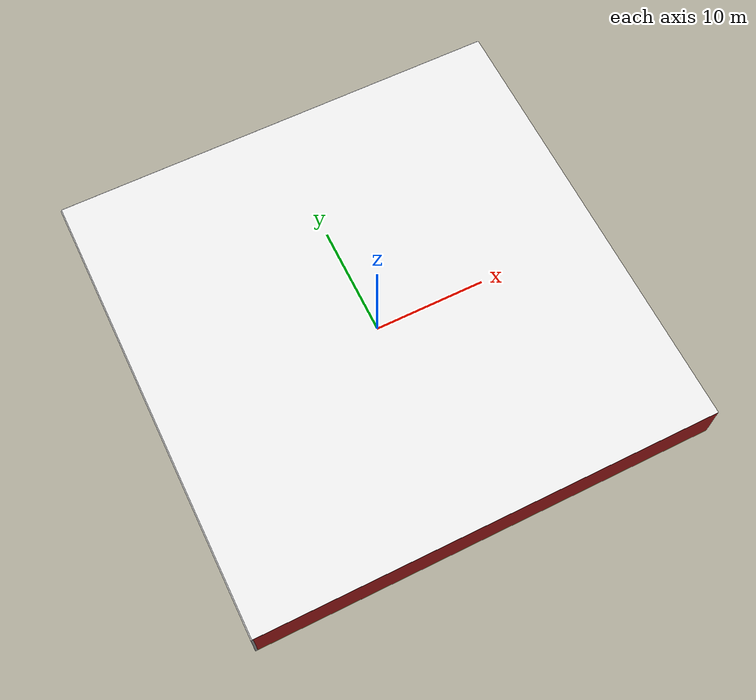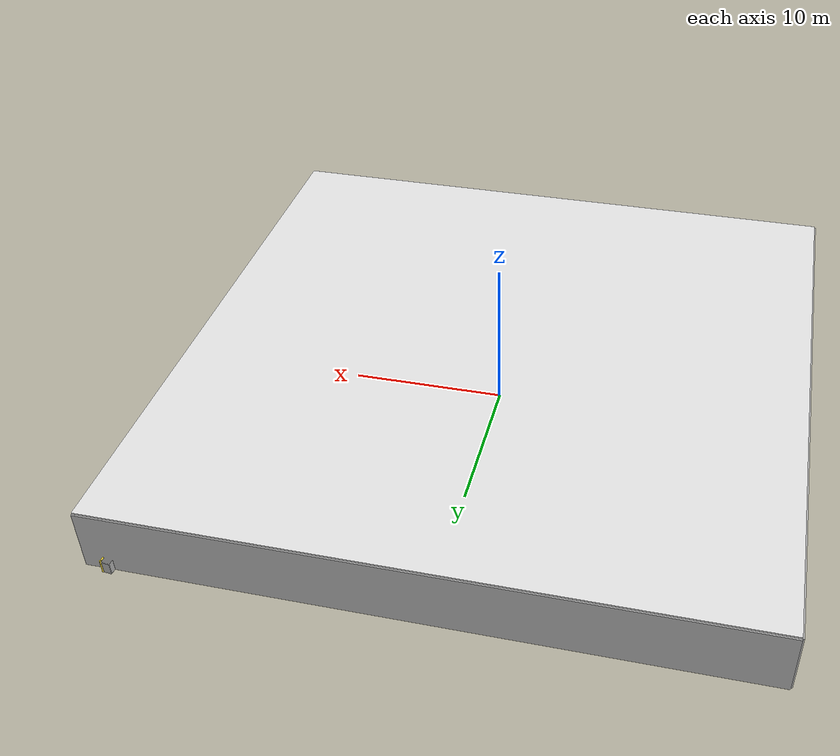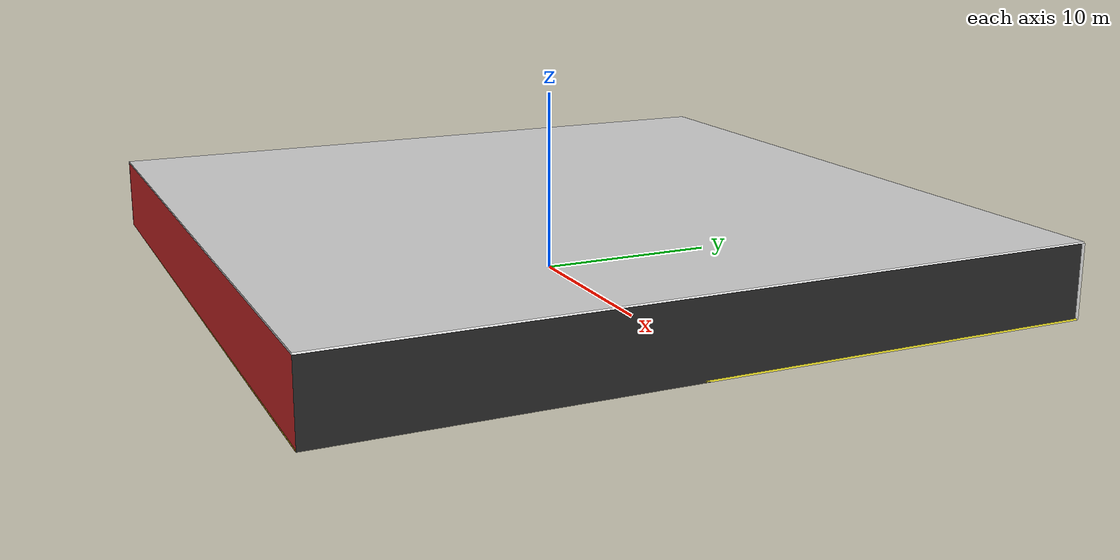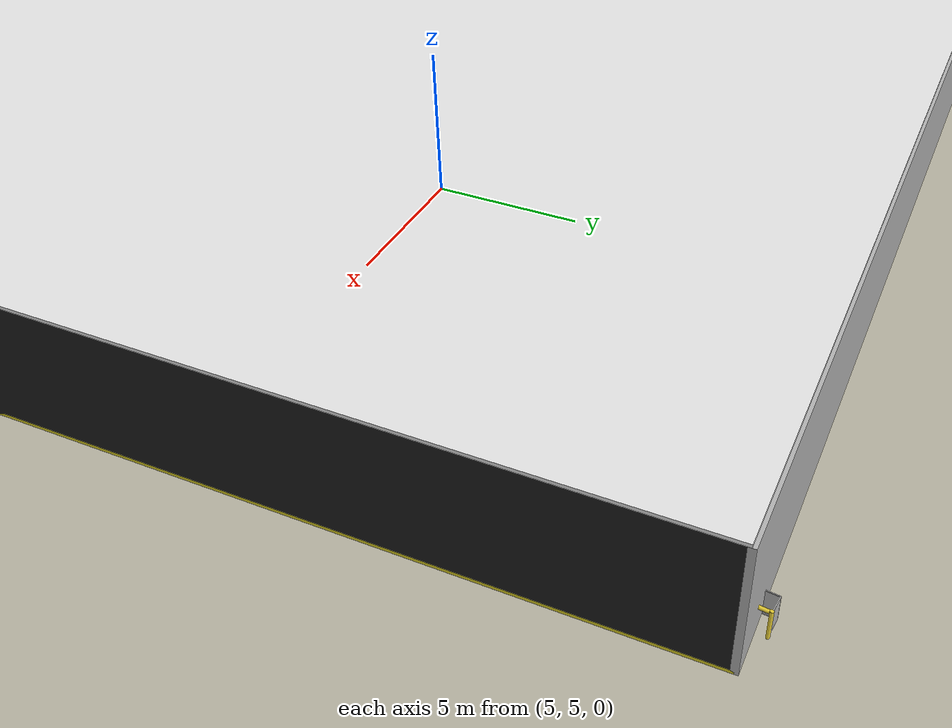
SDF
<sdf version="1.4">
 <world name="default">
  <physics type="ode">
   <max_step_size>0.001</max_step_size>
   <real_time_factor>1</real_time_factor>
   <real_time_update_rate>1000</real_time_update_rate>
   <gravity>0 0 -9.8</gravity>
  </physics>
  <scene><ambient>0.4 0.4 0.4 1</ambient><background>0.7 0.7 0.7 1</background><shadows>1</shadows></scene>
  <model name="Surrounding">
   <static>1</static>
   <link name="Ceiling">
    <collision name="Ceiling_Collision"><geometry><box><size>40 40 0.1</size></box></geometry></collision>
    <visual name="Ceiling_Visual">
     <geometry><box><size>40 40 0.1</size></box></geometry>
     <material>
      <script><uri>file://media/materials/scripts/gazebo.material</uri><name>Gazebo/WhiteGlow</name></script>
     </material>
    </visual>
    <pose>0 0 4.05 0 0 0</pose>
   </link>
   <link name="Wall_South">
    <collision name="Wall_South_Collision">
     <geometry><box><size>40 0 4</size></box></geometry>
     <pose>0 0 2 0 -0 0</pose>
    </collision>
    <visual name="Wall_South_Visual">
     <pose>0 0 2 0 -0 0</pose>
     <geometry><box><size>40 0 4</size></box></geometry>
     <material>
      <script><uri>file://media/materials/scripts/gazebo.material</uri><name>Gazebo/RedBright</name></script>
     </material>
    </visual>
    <velocity_decay><linear>0</linear><angular>0</angular></velocity_decay>
    <pose>0 -20 0 0 -0 0</pose>
   </link>
   <link name="Wall_East">
    <collision name="Wall_21_Collision">
     <geometry><box><size>40 0 4</size></box></geometry>
     <pose>0 0 2 0 -0 0</pose>
    </collision>
    <visual name="Wall_21_Visual">
     <pose>0 0 2 0 -0 0</pose>
     <geometry><box><size>40 0 4</size></box></geometry>
     <material>
      <script><uri>file://media/materials/scripts/gazebo.material</uri><name>Gazebo/Black</name></script>
     </material>
    </visual>
    <velocity_decay><linear>0</linear><angular>0</angular></velocity_decay>
    <pose>20 0 0 0 -0 1.5708</pose>
   </link>
   <link name="Wall_North">
    <collision name="Wall_22_Collision">
     <geometry><box><size>40 0.2 4</size></box></geometry>
     <pose>0 0 2 0 -0 0</pose>
    </collision>
    <visual name="Wall_22_Visual">
     <pose>0 0 2 0 -0 0</pose>
     <geometry><box><size>40 0.2 4</size></box></geometry>
     <material>
      <script><uri>file://media/materials/scripts/gazebo.material</uri><name>Gazebo/CloudySky</name></script>
     </material>
    </visual>
    <velocity_decay><linear>0</linear><angular>0</angular></velocity_decay>
    <pose>0 20 0 0 -0 0</pose>
   </link>
   <link name="Wall_West">
    <collision name="Wall_23_Collision">
     <geometry><box><size>40 0.2 4</size></box></geometry>
     <pose>0 0 2 0 -0 0</pose>
    </collision>
    <visual name="Wall_23_Visual">
     <pose>0 0 2 0 -0 0</pose>
     <geometry><box><size>40 0.2 4</size></box></geometry>
     <material>
      <script><uri>file://media/materials/scripts/gazebo.material</uri><name>Gazebo/JointAnchor</name></script>
     </material>
    </visual>
    <velocity_decay><linear>0</linear><angular>0</angular></velocity_decay>
    <pose>-20 0 0 0 0 -1.5708</pose>
   </link>
   <link name="Ground_link">
    <collision name="collision">
     <pose>0 0 .05 0 -0 0</pose>
     <geometry><box><size>40 40 0.1</size></box></geometry>
    </collision>
    <visual name="visual">
     <pose>0 0 .05 0 -0 0</pose>
     <geometry><box><size>40 40 0.1</size></box></geometry>
     <material>
      <script><uri>file://media/materials/scripts/gazebo.material</uri><name>Gazebo/YellowGlow</name></script>
     </material>
    </visual>
   </link>
   <static>1</static>
  </model>
  <spherical_coordinates>
   <surface_model>EARTH_WGS84</surface_model>
   <latitude_deg>0</latitude_deg>
   <longitude_deg>0</longitude_deg>
   <elevation>0</elevation>
   <heading_deg>0</heading_deg>
  </spherical_coordinates>
  <light name="lightball_0" type="diffuse">
   <diffuse>0.8 0.8 0.8 1</diffuse>
   <specular>0.2 0.2 0.2 1</specular>
   <attenuation>
    <range>100</range>
    <constant>0.7</constant>
    <linear>0.01</linear>
    <quadratic>0.001</quadratic>
   </attenuation>
   <direction>-0.5 0.1 -0.9</direction>
   <pose>16.0568041438 13.9365528204 2.45377829184 0 0 0</pose>
  </light>
  <light name="lightball_1" type="diffuse">
   <diffuse>0.8 0.8 0.8 1</diffuse>
   <specular>0.2 0.2 0.2 1</specular>
   <attenuation>
    <range>100</range>
    <constant>0.7</constant>
    <linear>0.01</linear>
    <quadratic>0.001</quadratic>
   </attenuation>
   <direction>-0.5 0.1 -0.9</direction>
   <pose>-3.37656085661 -14.2104183971 1.79728752771 0 0 0</pose>
  </light>
  <light name="lightball_2" type="diffuse">
   <diffuse>0.8 0.8 0.8 1</diffuse>
   <specular>0.2 0.2 0.2 1</specular>
   <attenuation>
    <range>100</range>
    <constant>0.7</constant>
    <linear>0.01</linear>
    <quadratic>0.001</quadratic>
   </attenuation>
   <direction>-0.5 0.1 -0.9</direction>
   <pose>-4.41636234158 2.35257784753 2.62425384921 0 0 0</pose>
  </light>
  <light name="lightball_3" type="diffuse">
   <diffuse>0.8 0.8 0.8 1</diffuse>
   <specular>0.2 0.2 0.2 1</specular>
   <attenuation>
    <range>100</range>
    <constant>0.7</constant>
    <linear>0.01</linear>
    <quadratic>0.001</quadratic>
   </attenuation>
   <direction>-0.5 0.1 -0.9</direction>
   <pose>-10.805246555 16.830710143 0.90440554808 0 0 0</pose>
  </light>
  <light name="lightball_4" type="diffuse">
   <diffuse>0.8 0.8 0.8 1</diffuse>
   <specular>0.2 0.2 0.2 1</specular>
   <attenuation>
    <range>100</range>
    <constant>0.7</constant>
    <linear>0.01</linear>
    <quadratic>0.001</quadratic>
   </attenuation>
   <direction>-0.5 0.1 -0.9</direction>
   <pose>-15.7397101554 15.3266820092 0.659328349773 0 0 0</pose>
  </light>
  <light name="lightball_5" type="diffuse">
   <diffuse>0.8 0.8 0.8 1</diffuse>
   <specular>0.2 0.2 0.2 1</specular>
   <attenuation>
    <range>100</range>
    <constant>0.7</constant>
    <linear>0.01</linear>
    <quadratic>0.001</quadratic>
   </attenuation>
   <direction>-0.5 0.1 -0.9</direction>
   <pose>-8.76878243267 2.88266590145 0.660529234403 0 0 0</pose>
  </light>
  <light name="lightball_6" type="diffuse">
   <diffuse>0.8 0.8 0.8 1</diffuse>
   <specular>0.2 0.2 0.2 1</specular>
   <attenuation>
    <range>100</range>
    <constant>0.7</constant>
    <linear>0.01</linear>
    <quadratic>0.001</quadratic>
   </attenuation>
   <direction>-0.5 0.1 -0.9</direction>
   <pose>-2.4089454159 4.63260509366 3.43349566352 0 0 0</pose>
  </light>
  <light name="lightball_7" type="diffuse">
   <diffuse>0.8 0.8 0.8 1</diffuse>
   <specular>0.2 0.2 0.2 1</specular>
   <attenuation>
    <range>100</range>
    <constant>0.7</constant>
    <linear>0.01</linear>
    <quadratic>0.001</quadratic>
   </attenuation>
   <direction>-0.5 0.1 -0.9</direction>
   <pose>-15.7582916354 -8.22705316689 3.11967252571 0 0 0</pose>
  </light>
  <light name="lightball_8" type="diffuse">
   <diffuse>0.8 0.8 0.8 1</diffuse>
   <specular>0.2 0.2 0.2 1</specular>
   <attenuation>
    <range>100</range>
    <constant>0.7</constant>
    <linear>0.01</linear>
    <quadratic>0.001</quadratic>
   </attenuation>
   <direction>-0.5 0.1 -0.9</direction>
   <pose>2.79448216245 9.37532106584 2.81202784243 0 0 0</pose>
  </light>
  <include>
   <uri>model://textured_shapes</uri>
   <pose>-18.0070616117 -17.6614349378 0 0 0 0.773419429288</pose>
  </include>
  <include><uri>model://cabinet</uri><pose>-13.5268329061 6.49667761947 0 0 0 2.51042229148</pose></include>
  <include>
   <uri>model://textured_shapes</uri>
   <pose>-11.5416037359 -6.02202433256 0 0 0 1.80228084324</pose>
  </include>
  <include>
   <uri>model://construction_cone</uri>
   <pose>-8.62373802071 -11.4942394658 0 0 0 1.33011793161</pose>
  </include>
  <include>
   <uri>model://construction_cone</uri>
   <pose>-8.61318720006 -2.0695185174 0 0 0 1.54005953069</pose>
  </include>
  <include>
   <uri>model://textured_shapes</uri>
   <pose>-8.27953899197 3.9534707576 0 0 0 0.227721482393</pose>
  </include>
  <include>
   <uri>model://construction_cone</uri>
   <pose>-8.99641534833 19.0032172135 0 0 0 0.61650590856</pose>
  </include>
  <include><uri>model://cabinet</uri><pose>-4.70616275279 -15.0849227293 0 0 0 0.654434946819</pose></include>
  <include>
   <uri>model://textured_shapes</uri>
   <pose>-4.75435545644 4.58273034876 0 0 0 1.93423595552</pose>
  </include>
  <include><uri>model://cabinet</uri><pose>-5.09638532217 7.17093110569 0 0 0 0.329990721772</pose></include>
  <include>
   <uri>model://construction_cone</uri>
   <pose>-1.73569028685 -5.92449257556 0 0 0 2.05122619108</pose>
  </include>
  <include>
   <uri>model://construction_cone</uri>
   <pose>1.29506418554 17.8452038181 0 0 0 0.301657127184</pose>
  </include>
  <include><uri>model://cabinet</uri><pose>4.58644815524 2.71243257033 0 0 0 0.0100737147233</pose></include>
  <include><uri>model://table</uri><pose>4.3583291223 18.1855050184 0 0 0 3.08962165285</pose></include>
  <include>
   <uri>model://robocup_3Dsim_goal</uri>
   <pose>5.51930960905 14.3811425495 0 0 0 2.1253628341</pose>
  </include>
  <include><uri>model://cabinet</uri><pose>9.755203974 0.897631871643 0 0 0 2.8421254466</pose></include>
  <include><uri>model://cabinet</uri><pose>9.02255465135 12.8166681784 0 0 0 0.187644047287</pose></include>
  <include>
   <uri>model://robocup_3Dsim_goal</uri>
   <pose>11.3875633698 2.59275298649 0 0 0 0.178257106803</pose>
  </include>
  <include>
   <uri>model://construction_cone</uri>
   <pose>12.2111523667 5.76868477482 0 0 0 2.07559094154</pose>
  </include>
  <include><uri>model://cabinet</uri><pose>12.6696373018 13.0140068137 0 0 0 2.3360006412</pose></include>
  <include>
   <uri>model://textured_shapes</uri>
   <pose>11.6551654223 18.337114564 0 0 0 1.09028893601</pose>
  </include>
  <include>
   <uri>model://construction_cone</uri>
   <pose>17.8924481663 -9.0246134013 0 0 0 2.52780036963</pose>
  </include>
  <include>
   <uri>model://construction_cone</uri>
   <pose>18.6127690868 -4.92547900828 0 0 0 0.450200143899</pose>
  </include>
  <include>
   <uri>model://robocup_3Dsim_goal</uri>
   <pose>18.6570548426 19.3593352061 0 0 0 3.0362789377</pose>
  </include>
 </world>
</sdf>

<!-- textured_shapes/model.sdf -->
<sdf version="1.6">
  <model name="textured_shapes">
    <pose>0 0 0.5 0 0 0</pose>
    <link name="box">
      <pose>0 -1.5 0 0 0 0</pose>
      <collision name="collision">
        <geometry>
          <box>
            <size>1 1 1</size>
          </box>
        </geometry>
      </collision>
      <visual name="visual">
        <geometry>
          <box>
            <size>1 1 1</size>
          </box>
        </geometry>
        <material>
          <script>
            <uri>model://../model_source/models/textured_shapes/materials/scripts</uri>
            <uri>model://../model_source/models/textured_shapes/materials/textures</uri>
            <name>TexturedShape/Squares</name>
          </script>
        </material>
      </visual>
    </link>
    <link name="sphere">
      <collision name="collision">
        <geometry>
          <sphere>
            <radius>0.5</radius>
          </sphere>
        </geometry>
      </collision>
      <visual name="visual">
        <geometry>
          <sphere>
            <radius>0.5</radius>
          </sphere>
        </geometry>
        <material>
          <script>
            <uri>model://../model_source/models/textured_shapes/materials/scripts</uri>
            <uri>model://../model_source/models/textured_shapes/materials/textures</uri>
            <name>TexturedShape/Squares</name>
          </script>
        </material>
      </visual>
    </link>
    <link name="cylinder">
      <pose>0 1.5 0 0 0 0</pose>
      <collision name="collision">
        <geometry>
          <cylinder>
            <radius>0.5</radius>
            <length>1</length>
          </cylinder>
        </geometry>
      </collision>
      <visual name="visual">
        <geometry>
          <cylinder>
            <radius>0.5</radius>
            <length>1</length>
          </cylinder>
        </geometry>
        <material>
          <script>
            <uri>model://../model_source/models/textured_shapes/materials/scripts</uri>
            <uri>model://../model_source/models/textured_shapes/materials/textures</uri>
            <name>TexturedShape/Squares</name>
          </script>
        </material>
      </visual>
    </link>
  </model>
</sdf>

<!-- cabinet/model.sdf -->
<sdf version="1.5">
  <model name="cabinet">
    <static>true</static>
    <link name="cabinet_bottom_plate">
      <inertial>
        <pose>0 0 -1 0 0 0</pose>
        <inertia>
          <ixx>2.050000</ixx>
          <ixy>0</ixy>
          <ixz>0</ixz>
          <iyy>2.050000</iyy>
          <iyz>0</iyz>
          <izz>2.050000</izz>
        </inertia>
        <mass>25.000000</mass>
      </inertial>
      <collision name="cabinet_bottom_plate_geom">
        <pose>0 0 0.010000 0 0 0</pose>
        <geometry>
          <box>
            <size>0.450000 0.450000 0.020000</size>
          </box>
        </geometry>
      </collision>
      <visual name="cabinet_bottom_plate_geom_visual">
        <pose>0 0 0.010000 0 0 0</pose>
        <geometry>
          <box>
            <size>0.450000 0.450000 0.020000</size>
          </box>
        </geometry>
        <material>
          <script>
            <uri>model://media/materials/scripts/gazebo.material</uri>
            <name>Gazebo/Wood</name>
          </script>
        </material>
      </visual>
      <collision name="cabinet_bottom_plate_geom_cabinet_back_plate">
        <pose>0.235000 0 0.510000 0 0 0</pose>
        <geometry>
          <box>
            <size>0.020000 0.450000 1.020000</size>
          </box>
        </geometry>
      </collision>
      <visual name="cabinet_bottom_plate_geom_cabinet_back_plate_visual">
        <pose>0.235000 0 0.510000 0 0 0</pose>
        <geometry>
          <box>
            <size>0.020000 0.450000 1.020000</size>
          </box>
        </geometry>
        <material>
          <script>
            <uri>model://media/materials/scripts/gazebo.material</uri>
            <name>Gazebo/Wood</name>
          </script>
        </material>
      </visual>
      <collision name="cabinet_bottom_plate_geom_cabinet_left_plate">
        <pose>0 0.235000 0.510000 0 0 0</pose>
        <geometry>
          <box>
            <size>0.450000 0.020000 1.020000</size>
          </box>
        </geometry>
      </collision>
      <visual name="cabinet_bottom_plate_geom_cabinet_left_plate_visual">
        <pose>0 0.235000 0.510000 0 0 0</pose>
        <geometry>
          <box>
            <size>0.450000 0.020000 1.020000</size>
          </box>
        </geometry>
        <material>
          <script>
            <uri>model://media/materials/scripts/gazebo.material</uri>
            <name>Gazebo/Wood</name>
          </script>
        </material>
      </visual>
      <collision name="cabinet_bottom_plate_geom_cabinet_middle_plate">
        <pose>0 0 0.510000 0 0 0</pose>
        <geometry>
          <box>
            <size>0.450000 0.450000 0.020000</size>
          </box>
        </geometry>
      </collision>
      <visual name="cabinet_bottom_plate_geom_cabinet_middle_plate_visual">
        <pose>0 0 0.510000 0 0 0</pose>
        <geometry>
          <box>
            <size>0.450000 0.450000 0.020000</size>
          </box>
        </geometry>
        <material>
          <script>
            <uri>model://media/materials/scripts/gazebo.material</uri>
            <name>Gazebo/Wood</name>
          </script>
        </material>
      </visual>
      <collision name="cabinet_bottom_plate_geom_cabinet_right_plate">
        <pose>0 -0.235000 0.510000 0 0 0</pose>
        <geometry>
          <box>
            <size>0.450000 0.020000 1.020000</size>
          </box>
        </geometry>
      </collision>
      <visual name="cabinet_bottom_plate_geom_cabinet_right_plate_visual">
        <pose>0 -0.235000 0.510000 0 0 0</pose>
        <geometry>
          <box>
            <size>0.450000 0.020000 1.020000</size>
          </box>
        </geometry>
        <material>
          <script>
            <uri>model://media/materials/scripts/gazebo.material</uri>
            <name>Gazebo/Wood</name>
          </script>
        </material>
      </visual>
      <collision name="cabinet_bottom_plate_geom_cabinet_top_plate">
        <pose>0 0 1.010000 0 0 0</pose>
        <geometry>
          <box>
            <size>0.450000 0.450000 0.020000</size>
          </box>
        </geometry>
      </collision>
      <visual name="cabinet_bottom_plate_geom_cabinet_top_plate_visual">
        <pose>0 0 1.010000 0 0 0</pose>
        <geometry>
          <box>
            <size>0.450000 0.450000 0.020000</size>
          </box>
        </geometry>
        <material>
          <script>
            <uri>model://media/materials/scripts/gazebo.material</uri>
            <name>Gazebo/Wood</name>
          </script>
        </material>
      </visual>
    </link>
  </model>
</sdf>

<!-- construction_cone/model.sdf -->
<sdf version="1.5">
  <model name="Construction Cone">
    <link name="link">
      <collision name="collision">
        <geometry>
          <mesh>
            <scale>10 10 10</scale>
            <uri>file://isr-testbed/construction_cone/meshes/construction_cone.dae</uri>
          </mesh>
        </geometry>
      </collision>
      <visual name="visual">
        <geometry>
          <mesh>
            <scale>10 10 10</scale>
            <uri>file://isr-testbed/construction_cone/meshes/construction_cone.dae</uri>
          </mesh>
        </geometry>
      </visual>
    </link>
  </model>
</sdf>

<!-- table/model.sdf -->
<sdf version="1.5">
  <model name="table">
    <static>true</static>
    <link name="link">
      <collision name="surface">
        <pose>0 0 1.0 0 0 0</pose>
        <geometry>
          <box>
            <size>1.5 0.8 0.03</size>
          </box>
        </geometry>
        <surface>
          <friction>
            <ode>
              <mu>0.6</mu>
              <mu2>0.6</mu2>
            </ode>
          </friction>
        </surface>
      </collision>
      <visual name="visual1">
        <pose>0 0 1.0 0 0 0</pose>
        <geometry>
          <box>
            <size>1.5 0.8 0.03</size>
          </box>
        </geometry>
        <material>
          <script>
            <uri>model://media/materials/scripts/gazebo.material</uri>
            <name>Gazebo/Wood</name>
          </script>
        </material>
      </visual>
      <collision name="front_left_leg">
        <pose>0.68 0.38 0.5 0 0 0</pose>
        <geometry>
          <cylinder>
            <radius>0.02</radius>
            <length>1.0</length>
          </cylinder>
        </geometry>
      </collision>
      <visual name="front_left_leg">
        <pose>0.68 0.38 0.5 0 0 0</pose>
        <geometry>
          <cylinder>
            <radius>0.02</radius>
            <length>1.0</length>
          </cylinder>
        </geometry>
        <material>
          <script>
            <uri>model://media/materials/scripts/gazebo.material</uri>
            <name>Gazebo/Grey</name>
          </script>
        </material>
      </visual>
      <collision name="front_right_leg">
        <pose>0.68 -0.38 0.5 0 0 0</pose>
        <geometry>
          <cylinder>
            <radius>0.02</radius>
            <length>1.0</length>
          </cylinder>
        </geometry>
      </collision>
      <visual name="front_right_leg">
        <pose>0.68 -0.38 0.5 0 0 0</pose>
        <geometry>
          <cylinder>
            <radius>0.02</radius>
            <length>1.0</length>
          </cylinder>
        </geometry>
        <material>
          <script>
            <uri>model://media/materials/scripts/gazebo.material</uri>
            <name>Gazebo/Grey</name>
          </script>
        </material>
      </visual>
      <collision name="back_right_leg">
        <pose>-0.68 -0.38 0.5 0 0 0</pose>
        <geometry>
          <cylinder>
            <radius>0.02</radius>
            <length>1.0</length>
          </cylinder>
        </geometry>
      </collision>
      <visual name="back_right_leg">
        <pose>-0.68 -0.38 0.5 0 0 0</pose>
        <geometry>
          <cylinder>
            <radius>0.02</radius>
            <length>1.0</length>
          </cylinder>
        </geometry>
        <material>
          <script>
            <uri>model://media/materials/scripts/gazebo.material</uri>
            <name>Gazebo/Grey</name>
          </script>
        </material>
      </visual>
      <collision name="back_left_leg">
        <pose>-0.68 0.38 0.5 0 0 0</pose>
        <geometry>
          <cylinder>
            <radius>0.02</radius>
            <length>1.0</length>
          </cylinder>
        </geometry>
      </collision>
      <visual name="back_left_leg">
        <pose>-0.68 0.38 0.5 0 0 0</pose>
        <geometry>
          <cylinder>
            <radius>0.02</radius>
            <length>1.0</length>
          </cylinder>
        </geometry>
        <material>
          <script>
            <uri>model://media/materials/scripts/gazebo.material</uri>
            <name>Gazebo/Grey</name>
          </script>
        </material>
      </visual>
    </link>
  </model>
</sdf>

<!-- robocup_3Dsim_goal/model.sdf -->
<sdf version="1.5">
  <model name="robocup_3d_goal">
    <static>true</static>
    <link name="left_post">
      <pose>0 1.05 0.45 0 0 0</pose>
      <collision name="collision">
        <geometry>
          <cylinder>
            <radius>0.05</radius>
            <length>0.9</length>
          </cylinder>
        </geometry>
      </collision>
      <visual name="visual">
        <geometry>
          <cylinder>
            <radius>0.05</radius>
            <length>0.9</length>
          </cylinder>
        </geometry>
        <material>
          <script>
            <uri>file://media/materials/scripts/gazebo.material</uri>
            <name>Gazebo/ZincYellow</name>
          </script>
        </material>
      </visual>
    </link>
    <link name="left_support_horiz_lower">
      <pose>0.30 1.05 0.01 0 0 0</pose>
      <collision name="collision">
        <geometry>
          <box>
            <size>0.50 0.02 0.02</size>
          </box>
        </geometry>
      </collision>
      <visual name="visual">
        <geometry>
          <box>
            <size>0.50 0.02 0.02</size>
          </box>
        </geometry>
        <material>
          <script>
            <uri>file://media/materials/scripts/gazebo.material</uri>
            <name>Gazebo/White</name>
          </script>
        </material>
      </visual>
    </link>
    <link name="left_support_horiz_upper">
      <pose>0.30 1.05 0.79 0 0 0</pose>
      <collision name="collision">
        <geometry>
          <box>
            <size>0.50 0.02 0.02</size>
          </box>
        </geometry>
      </collision>
      <visual name="visual">
        <geometry>
          <box>
            <size>0.50 0.02 0.02</size>
          </box>
        </geometry>
        <material>
          <script>
            <uri>file://media/materials/scripts/gazebo.material</uri>
            <name>Gazebo/White</name>
          </script>
        </material>
      </visual>
    </link>
    <link name="left_support_vertical">
      <pose>0.56 1.05 0.4 0 1.5708 0</pose>
      <collision name="collision">
        <geometry>
          <box>
            <size>0.80 0.02 0.02</size>
          </box>
        </geometry>
      </collision>
      <visual name="visual">
        <geometry>
          <box>
            <size>0.80 0.02 0.02</size>
          </box>
        </geometry>
        <material>
          <script>
            <uri>file://media/materials/scripts/gazebo.material</uri>
            <name>Gazebo/White</name>
          </script>
        </material>
      </visual>
    </link>
    <link name="right_support_horiz_lower">
      <pose>0.30 -1.05 0.01 0 0 0</pose>
      <collision name="collision">
        <geometry>
          <box>
            <size>0.50 0.02 0.02</size>
          </box>
        </geometry>
      </collision>
      <visual name="visual">
        <geometry>
          <box>
            <size>0.50 0.02 0.02</size>
          </box>
        </geometry>
        <material>
          <script>
            <uri>file://media/materials/scripts/gazebo.material</uri>
            <name>Gazebo/White</name>
          </script>
        </material>
      </visual>
    </link>
    <link name="right_support_horiz_upper">
      <pose>0.30 -1.05 0.79 0 0 0</pose>
      <collision name="collision">
        <geometry>
          <box>
            <size>0.50 0.02 0.02</size>
          </box>
        </geometry>
      </collision>
      <visual name="visual">
        <geometry>
          <box>
            <size>0.50 0.02 0.02</size>
          </box>
        </geometry>
        <material>
          <script>
            <uri>file://media/materials/scripts/gazebo.material</uri>
            <name>Gazebo/White</name>
          </script>
        </material>
      </visual>
    </link>
    <link name="right_support_vertical">
      <pose>0.56 -1.05 0.4 0 1.5708 0</pose>
      <collision name="collision">
        <geometry>
          <box>
            <size>0.80 0.02 0.02</size>
          </box>
        </geometry>
      </collision>
      <visual name="visual">
        <geometry>
          <box>
            <size>0.80 0.02 0.02</size>
          </box>
        </geometry>
        <material>
          <script>
            <uri>file://media/materials/scripts/gazebo.material</uri>
            <name>Gazebo/White</name>
          </script>
        </material>
      </visual>
    </link>
    <link name="center_support_horiz_lower">
      <pose>0.56 0 0.01 0 1.5708 0</pose>
      <collision name="collision">
        <geometry>
          <box>
            <size>0.02 2.08 0.02</size>
          </box>
        </geometry>
      </collision>
      <visual name="visual">
        <geometry>
          <box>
            <size>0.02 2.08 0.02</size>
          </box>
        </geometry>
        <material>
          <script>
            <uri>file://media/materials/scripts/gazebo.material</uri>
            <name>Gazebo/White</name>
          </script>
        </material>
      </visual>
    </link>
    <link name="center_support_horiz_upper">
      <pose>0.56 0 0.79 0 1.5708 0</pose>
      <collision name="collision">
        <geometry>
          <box>
            <size>0.02 2.08 0.02</size>
          </box>
        </geometry>
      </collision>
      <visual name="visual">
        <geometry>
          <box>
            <size>0.02 2.08 0.02</size>
          </box>
        </geometry>
        <material>
          <script>
            <uri>file://media/materials/scripts/gazebo.material</uri>
            <name>Gazebo/White</name>
          </script>
        </material>
      </visual>
    </link>
    <link name="right_post">
      <pose>0 -1.05 0.45 0 0 0</pose>
      <collision name="collision">
        <geometry>
          <cylinder>
            <radius>0.05</radius>
            <length>0.9</length>
          </cylinder>
        </geometry>
      </collision>
      <visual name="visual">
        <geometry>
          <cylinder>
            <radius>0.05</radius>
            <length>0.9</length>
          </cylinder>
        </geometry>
        <material>
          <script>
            <uri>file://media/materials/scripts/gazebo.material</uri>
            <name>Gazebo/ZincYellow</name>
          </script>
        </material>
      </visual>
    </link>
    <link name="crossbar">
      <pose>0 0 0.85 1.57 1.57 0</pose>
      <collision name="collision">
        <geometry>
          <cylinder>
            <radius>0.05</radius>
            <length>2.0</length>
          </cylinder>
        </geometry>
      </collision>
      <visual name="visual">
        <geometry>
          <cylinder>
            <radius>0.05</radius>
            <length>2.0</length>
          </cylinder>
        </geometry>
        <material>
          <script>
            <uri>file://media/materials/scripts/gazebo.material</uri>
            <name>Gazebo/ZincYellow</name>
          </script>
        </material>
      </visual>
    </link>
    <link name="center_net">
      <pose>0.56 0 0.40 0 0 0</pose>
      <collision name="collision">
        <geometry>
          <box>
            <size>0.01 2.1 0.80</size>
          </box>
        </geometry>
      </collision>
      <visual name="visual">
        <geometry>
          <box>
            <size>0.01 2.1 0.80</size>
          </box>
        </geometry>
        <material>
          <script>
            <uri>model://../model_source/models/robocup09_spl_field/materials/scripts/</uri>
            <uri>model://../model_source/models/robocup09_spl_field/materials/textures/</uri>
            <name>RoboCup/Net</name>
          </script>
        </material>
      </visual>
    </link>
    <link name="left_net">
      <pose>0.30 1.05 0.40 0 0 0</pose>
      <collision name="collision">
        <geometry>
          <box>
            <size>0.50 0.01 0.76</size>
          </box>
        </geometry>
      </collision>
      <visual name="visual">
        <geometry>
          <box>
            <size>0.50 0.01 0.76</size>
          </box>
        </geometry>
        <material>
          <script>
            <uri>model://../model_source/models/robocup09_spl_field/materials/scripts/</uri>
            <uri>model://../model_source/models/robocup09_spl_field/materials/textures/</uri>
            <name>RoboCup/Net</name>
          </script>
        </material>
      </visual>
    </link>
    <link name="right_net">
      <pose>0.30 -1.05 0.40 0 0 0</pose>
      <collision name="collision">
        <geometry>
          <box>
            <size>0.50 0.01 0.76</size>
          </box>
        </geometry>
      </collision>
      <visual name="visual">
        <geometry>
          <box>
            <size>0.50 0.01 0.76</size>
          </box>
        </geometry>
        <material>
          <script>
            <uri>model://../model_source/models/robocup09_spl_field/materials/scripts/</uri>
            <uri>model://../model_source/models/robocup09_spl_field/materials/textures/</uri>
            <name>RoboCup/Net</name>
          </script>
        </material>
      </visual>
    </link>
  </model>
</sdf>
